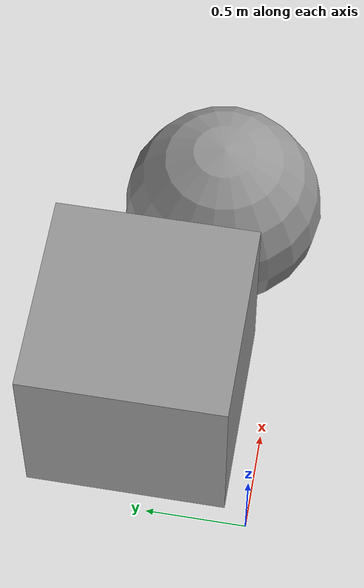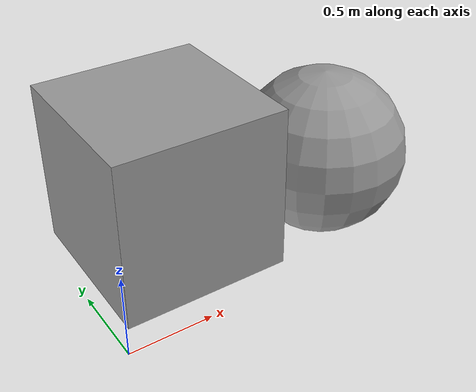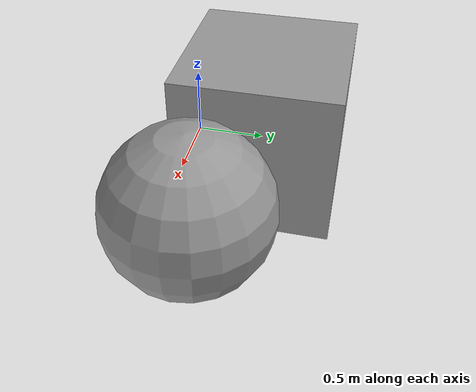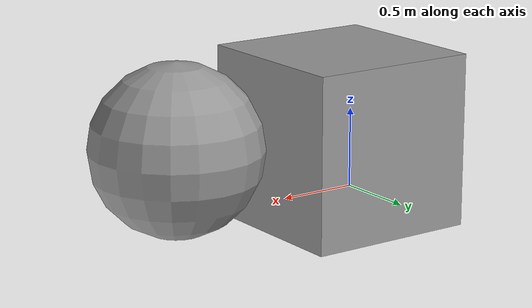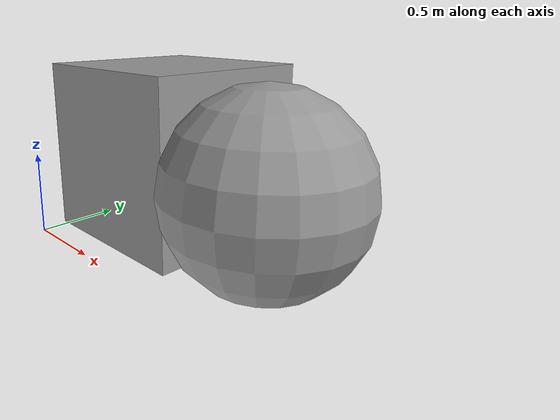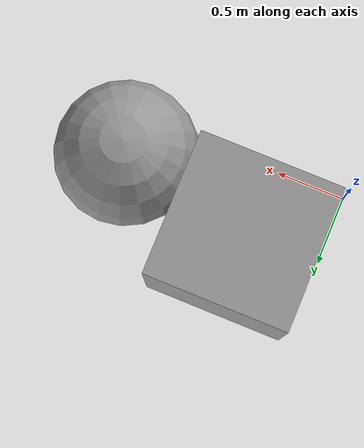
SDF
<?xml version="1.0" ?>
<sdf version="1.6">
  <world name="default">
    <light name='sun' type='directional'>
      <cast_shadows>1</cast_shadows>
      <pose>0 0 10 0 0 0</pose>
      <diffuse>0.8 0.8 0.8 1</diffuse>
      <specular>0.2 0.2 0.2 1</specular>
      <attenuation>
        <range>1000</range>
        <constant>0.9</constant>
        <linear>0.01</linear>
        <quadratic>0.001</quadratic>
      </attenuation>
      <direction>0.5 0.1 -0.9</direction>
    </light>

    <model name="box_0">
      <static>1</static>
      <link name="link">
      <visual name='visual'>
        <geometry>
          <box>
            <size>1 1 1</size>
          </box>
        </geometry>
        <material>
          <script>
            <name>Gazebo/Grey</name>
            <uri>file://media/materials/scripts/gazebo.material</uri>
          </script>
        </material>
      </visual>
      <collision name='collision'>
        <geometry>
          <box>
            <size>1 1 1</size>
          </box>
        </geometry>
        <max_contacts>10</max_contacts>
        <surface>
          <contact>
            <ode/>
          </contact>
          <bounce/>
          <friction>
            <torsional>
              <ode/>
            </torsional>
            <ode/>
          </friction>
        </surface>
      </collision>
        <self_collide>0</self_collide>
        <enable_wind>0</enable_wind>
        <kinematic>0</kinematic>
      </link>
      <pose>0.5608015759346849 0.615994714164688 0.5499999999999998 0 0 0</pose>
    </model>
    <model name="sphere_0">
      <static>1</static>
      <link name="link">
      <visual name='visual'>
        <geometry>
          <sphere>
            <radius>0.5</radius>
          </sphere>
        </geometry>
        <material>
          <script>
            <name>Gazebo/Grey</name>
            <uri>file://media/materials/scripts/gazebo.material</uri>
          </script>
        </material>
      </visual>
      <collision name='collision'>
        <geometry>
          <sphere>
            <radius>0.5</radius>
          </sphere>
        </geometry>
        <max_contacts>10</max_contacts>
        <surface>
          <contact>
            <ode/>
          </contact>
          <bounce/>
          <friction>
            <torsional>
              <ode/>
            </torsional>
            <ode/>
          </friction>
        </surface>
      </collision>
        <self_collide>0</self_collide>
        <enable_wind>0</enable_wind>
        <kinematic>0</kinematic>
      </link>
      <pose>1.503790094958452 0.36070903416298705 0.5499999999999998 0 0 0</pose>
    </model>
  </world>
</sdf>
